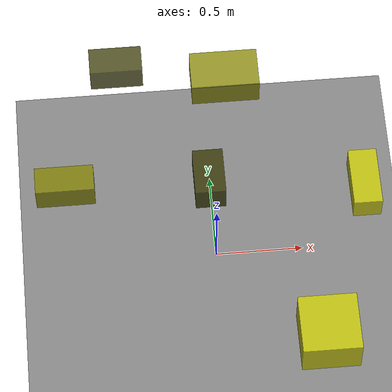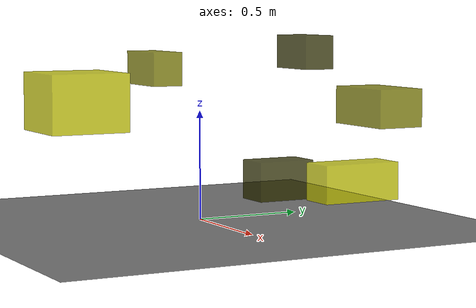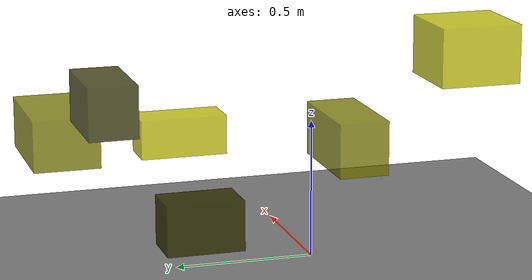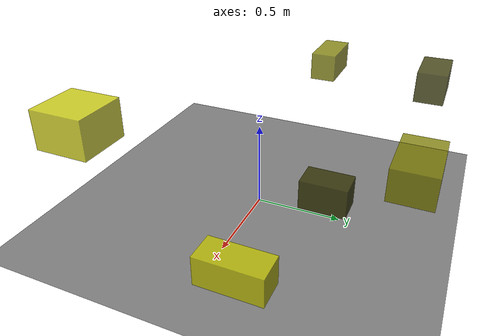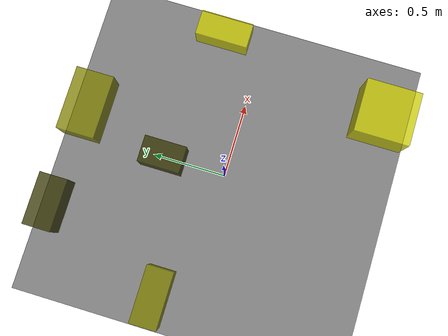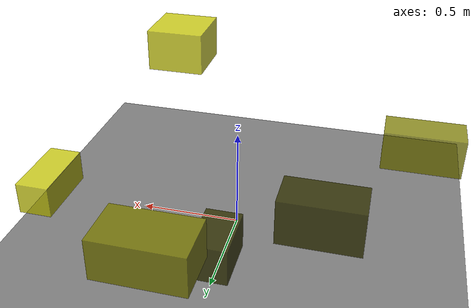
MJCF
<?xml version="1.0"?>
<mujoco model="obstacle_scene">
  <compiler angle="radian" coordinate="local"/>
  <option timestep="0.001" gravity="0 0 -9.81"/>

  <asset>
    <material name="obstacle_mat" rgba="0.8 0.8 0.0 0.8"/>
    <material name="ground_mat" rgba="0.5 0.5 0.5 1"/>
  </asset>

  <worldbody>
    <!-- Ground plane -->
    <geom name="ground" type="plane" size="3 3 0.1" material="ground_mat"/>

    <!-- Obstacles -->
    <body name="obstacle_0" pos="-0.008596 0.415166 0.162325">
      <geom name="obs_0" type="box" size="0.087666 0.140464 0.091673" rgba="0.2 0.2 0.0 0.8"/>
    </body>
    <body name="obstacle_1" pos="0.118163 0.894761 0.498804">
      <geom name="obs_1" type="box" size="0.193830 0.115816 0.090158" rgba="0.5 0.5 0.0 0.8"/>
    </body>
    <body name="obstacle_2" pos="0.539406 -0.818887 0.602935">
      <geom name="obs_2" type="box" size="0.158959 0.161686 0.116860" rgba="0.8 0.8 0.0 0.8"/>
    </body>
    <body name="obstacle_3" pos="-0.503807 0.855185 0.739543">
      <geom name="obs_3" type="box" size="0.147591 0.079337 0.085110" rgba="0.2 0.2 0.0 0.8"/>
    </body>
    <body name="obstacle_4" pos="-0.832400 0.158082 0.657168">
      <geom name="obs_4" type="box" size="0.162675 0.077494 0.084620" rgba="0.5 0.5 0.0 0.8"/>
    </body>
    <body name="obstacle_5" pos="0.878069 0.262884 0.259927">
      <geom name="obs_5" type="box" size="0.080519 0.172631 0.078149" rgba="0.8 0.8 0.0 0.8"/>
    </body>
  </worldbody>
</mujoco>
